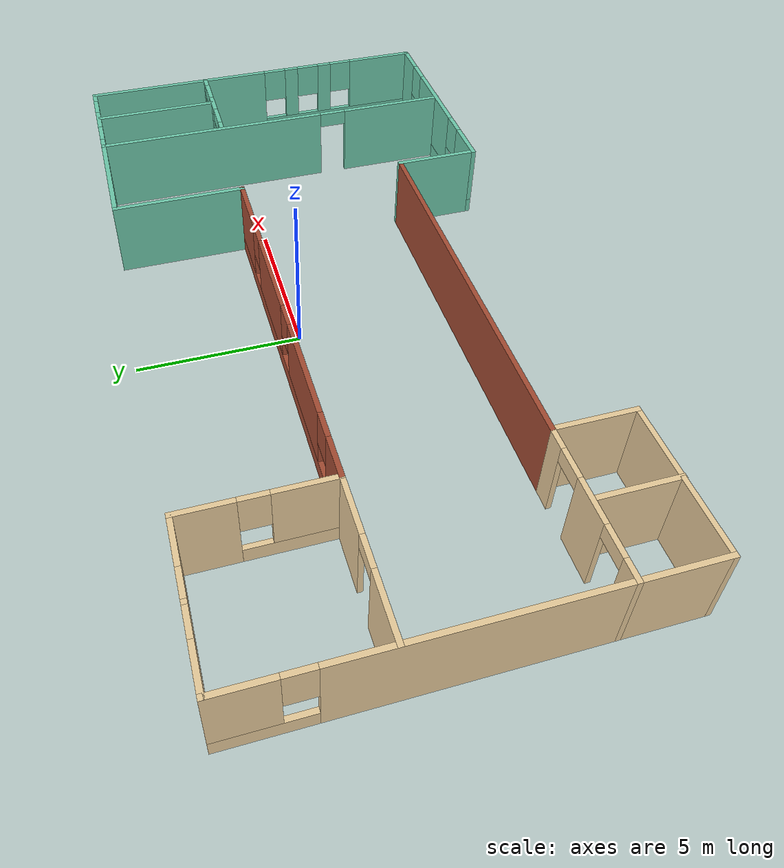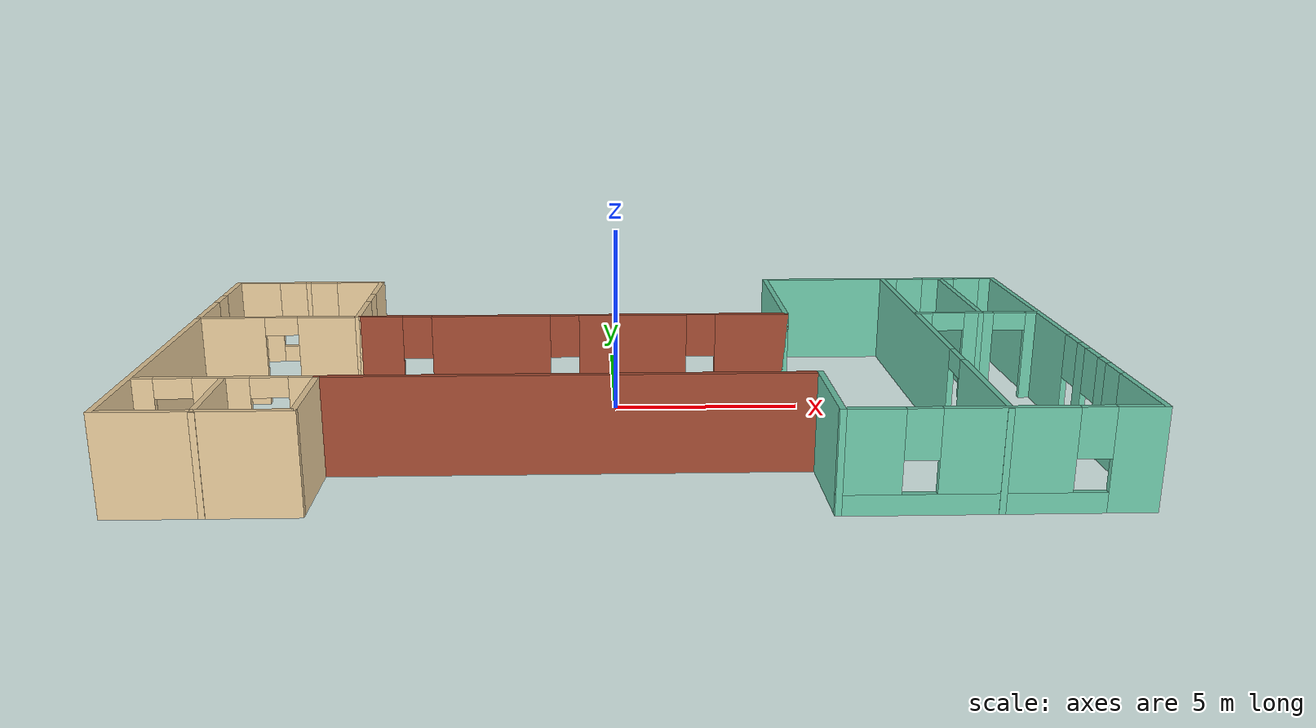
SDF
<?xml version='1.0'?>
<sdf version='1.6'>
  <model name='model.sdf'>
    <pose frame=''>0.195571 -1.26672 0 0 -0 0</pose>
    <link name='Wall_100'>
      <pose frame=''>-11.65 0.128883 0 0 -0 1.5708</pose>
      <visual name='Wall_100_Visual_0'>
        <pose frame=''>-1.2305 0 1.25 0 -0 0</pose>
        <geometry>
          <box>
            <size>9.53899 0.15 2.5</size>
          </box>
        </geometry>
        <material>
          <script>
            <uri>file://media/materials/scripts/gazebo.material</uri>
            <name>Gazebo/Grey</name>
          </script>
          <ambient>0.921569 0.807843 0.615686 1</ambient>
        </material>
        <meta>
          <layer>0</layer>
        </meta>
      </visual>
      <collision name='Wall_100_Collision_0'>
        <geometry>
          <box>
            <size>9.53899 0.15 2.5</size>
          </box>
        </geometry>
        <pose frame=''>-1.2305 0 1.25 0 -0 0</pose>
      </collision>
      <visual name='Wall_100_Visual_1'>
        <pose frame=''>4.7695 0 0.25 0 -0 0</pose>
        <geometry>
          <box>
            <size>2.46101 0.15 0.5</size>
          </box>
        </geometry>
        <material>
          <script>
            <uri>file://media/materials/scripts/gazebo.material</uri>
            <name>Gazebo/Grey</name>
          </script>
          <ambient>0.921569 0.807843 0.615686 1</ambient>
        </material>
        <meta>
          <layer>0</layer>
        </meta>
      </visual>
      <collision name='Wall_100_Collision_1'>
        <geometry>
          <box>
            <size>2.46101 0.15 0.5</size>
          </box>
        </geometry>
        <pose frame=''>4.7695 0 0.25 0 -0 0</pose>
      </collision>
      <visual name='Wall_100_Visual_2'>
        <pose frame=''>5.1695 0 1.5 0 -0 0</pose>
        <geometry>
          <box>
            <size>1.66101 0.15 2</size>
          </box>
        </geometry>
        <material>
          <script>
            <uri>file://media/materials/scripts/gazebo.material</uri>
            <name>Gazebo/Grey</name>
          </script>
          <ambient>0.921569 0.807843 0.615686 1</ambient>
        </material>
        <meta>
          <layer>0</layer>
        </meta>
      </visual>
      <collision name='Wall_100_Collision_2'>
        <geometry>
          <box>
            <size>1.66101 0.15 2</size>
          </box>
        </geometry>
        <pose frame=''>5.1695 0 1.5 0 -0 0</pose>
      </collision>
      <visual name='Wall_100_Visual_3'>
        <pose frame=''>3.93899 0 1.9 0 -0 0</pose>
        <geometry>
          <box>
            <size>0.8 0.15 1.2</size>
          </box>
        </geometry>
        <material>
          <script>
            <uri>file://media/materials/scripts/gazebo.material</uri>
            <name>Gazebo/Grey</name>
          </script>
          <ambient>0.921569 0.807843 0.615686 1</ambient>
        </material>
        <meta>
          <layer>0</layer>
        </meta>
      </visual>
      <collision name='Wall_100_Collision_3'>
        <geometry>
          <box>
            <size>0.8 0.15 1.2</size>
          </box>
        </geometry>
        <pose frame=''>3.93899 0 1.9 0 -0 0</pose>
      </collision>
    </link>
    <link name='Wall_102'>
      <pose frame=''>-9.475 -3.44612 0 0 -0 3.14159</pose>
      <visual name='Wall_102_Visual_0'>
        <pose frame=''>-1.89007 0 1.25 0 -0 0</pose>
        <geometry>
          <box>
            <size>0.719867 0.15 2.5</size>
          </box>
        </geometry>
        <material>
          <script>
            <uri>file://media/materials/scripts/gazebo.material</uri>
            <name>Gazebo/Grey</name>
          </script>
          <ambient>0.921569 0.807843 0.615686 1</ambient>
        </material>
        <meta>
          <layer>0</layer>
        </meta>
      </visual>
      <collision name='Wall_102_Collision_0'>
        <geometry>
          <box>
            <size>0.719867 0.15 2.5</size>
          </box>
        </geometry>
        <pose frame=''>-1.89007 0 1.25 0 -0 0</pose>
      </collision>
      <visual name='Wall_102_Visual_1'>
        <pose frame=''>0.035726 0 1.25 0 -0 0</pose>
        <geometry>
          <box>
            <size>1.33172 0.15 2.5</size>
          </box>
        </geometry>
        <material>
          <script>
            <uri>file://media/materials/scripts/gazebo.material</uri>
            <name>Gazebo/Grey</name>
          </script>
          <ambient>0.921569 0.807843 0.615686 1</ambient>
        </material>
        <meta>
          <layer>0</layer>
        </meta>
      </visual>
      <collision name='Wall_102_Collision_1'>
        <geometry>
          <box>
            <size>1.33172 0.15 2.5</size>
          </box>
        </geometry>
        <pose frame=''>0.035726 0 1.25 0 -0 0</pose>
      </collision>
      <visual name='Wall_102_Visual_2'>
        <pose frame=''>1.92579 0 1.25 0 -0 0</pose>
        <geometry>
          <box>
            <size>0.648414 0.15 2.5</size>
          </box>
        </geometry>
        <material>
          <script>
            <uri>file://media/materials/scripts/gazebo.material</uri>
            <name>Gazebo/Grey</name>
          </script>
          <ambient>0.921569 0.807843 0.615686 1</ambient>
        </material>
        <meta>
          <layer>0</layer>
        </meta>
      </visual>
      <collision name='Wall_102_Collision_2'>
        <geometry>
          <box>
            <size>0.648414 0.15 2.5</size>
          </box>
        </geometry>
        <pose frame=''>1.92579 0 1.25 0 -0 0</pose>
      </collision>
      <visual name='Wall_102_Visual_3'>
        <pose frame=''>-1.08013 0 2.25 0 -0 0</pose>
        <geometry>
          <box>
            <size>0.9 0.15 0.5</size>
          </box>
        </geometry>
        <material>
          <script>
            <uri>file://media/materials/scripts/gazebo.material</uri>
            <name>Gazebo/Grey</name>
          </script>
          <ambient>0.921569 0.807843 0.615686 1</ambient>
        </material>
        <meta>
          <layer>0</layer>
        </meta>
      </visual>
      <collision name='Wall_102_Collision_3'>
        <geometry>
          <box>
            <size>0.9 0.15 0.5</size>
          </box>
        </geometry>
        <pose frame=''>-1.08013 0 2.25 0 -0 0</pose>
      </collision>
      <visual name='Wall_102_Visual_4'>
        <pose frame=''>1.15159 0 2.25 0 -0 0</pose>
        <geometry>
          <box>
            <size>0.9 0.15 0.5</size>
          </box>
        </geometry>
        <material>
          <script>
            <uri>file://media/materials/scripts/gazebo.material</uri>
            <name>Gazebo/Grey</name>
          </script>
          <ambient>0.921569 0.807843 0.615686 1</ambient>
        </material>
        <meta>
          <layer>0</layer>
        </meta>
      </visual>
      <collision name='Wall_102_Collision_4'>
        <geometry>
          <box>
            <size>0.9 0.15 0.5</size>
          </box>
        </geometry>
        <pose frame=''>1.15159 0 2.25 0 -0 0</pose>
      </collision>
    </link>
    <link name='Wall_104'>
      <pose frame=''>-9.475 1.95388 0 0 -0 3.14159</pose>
      <visual name='Wall_104_Visual_0'>
        <pose frame=''>-1.38793 0 1.25 0 -0 0</pose>
        <geometry>
          <box>
            <size>1.72414 0.15 2.5</size>
          </box>
        </geometry>
        <material>
          <script>
            <uri>file://media/materials/scripts/gazebo.material</uri>
            <name>Gazebo/Grey</name>
          </script>
          <ambient>0.921569 0.807843 0.615686 1</ambient>
        </material>
        <meta>
          <layer>0</layer>
        </meta>
      </visual>
      <collision name='Wall_104_Collision_0'>
        <geometry>
          <box>
            <size>1.72414 0.15 2.5</size>
          </box>
        </geometry>
        <pose frame=''>-1.38793 0 1.25 0 -0 0</pose>
      </collision>
      <visual name='Wall_104_Visual_1'>
        <pose frame=''>1.31207 0 1.25 0 -0 0</pose>
        <geometry>
          <box>
            <size>1.87586 0.15 2.5</size>
          </box>
        </geometry>
        <material>
          <script>
            <uri>file://media/materials/scripts/gazebo.material</uri>
            <name>Gazebo/Grey</name>
          </script>
          <ambient>0.921569 0.807843 0.615686 1</ambient>
        </material>
        <meta>
          <layer>0</layer>
        </meta>
      </visual>
      <collision name='Wall_104_Collision_1'>
        <geometry>
          <box>
            <size>1.87586 0.15 2.5</size>
          </box>
        </geometry>
        <pose frame=''>1.31207 0 1.25 0 -0 0</pose>
      </collision>
      <visual name='Wall_104_Visual_2'>
        <pose frame=''>-0.07586 0 2.25 0 -0 0</pose>
        <geometry>
          <box>
            <size>0.9 0.15 0.5</size>
          </box>
        </geometry>
        <material>
          <script>
            <uri>file://media/materials/scripts/gazebo.material</uri>
            <name>Gazebo/Grey</name>
          </script>
          <ambient>0.921569 0.807843 0.615686 1</ambient>
        </material>
        <meta>
          <layer>0</layer>
        </meta>
      </visual>
      <collision name='Wall_104_Collision_2'>
        <geometry>
          <box>
            <size>0.9 0.15 0.5</size>
          </box>
        </geometry>
        <pose frame=''>-0.07586 0 2.25 0 -0 0</pose>
      </collision>
    </link>
    <link name='Wall_106'>
      <pose frame=''>8.20964 -0.003883 0 0 0 -1.5708</pose>
      <visual name='Wall_106_Visual_0'>
        <pose frame=''>-2.24841 0 1.25 0 -0 0</pose>
        <geometry>
          <box>
            <size>7.75318 0.15 2.5</size>
          </box>
        </geometry>
        <material>
          <script>
            <uri>file://media/materials/scripts/gazebo.material</uri>
            <name>Gazebo/Grey</name>
          </script>
          <ambient>0.435294 0.796078 0.67451 1</ambient>
        </material>
        <meta>
          <layer>0</layer>
        </meta>
      </visual>
      <collision name='Wall_106_Collision_0'>
        <geometry>
          <box>
            <size>7.75318 0.15 2.5</size>
          </box>
        </geometry>
        <pose frame=''>-2.24841 0 1.25 0 -0 0</pose>
      </collision>
      <visual name='Wall_106_Visual_1'>
        <pose frame=''>4.32659 0 1.25 0 -0 0</pose>
        <geometry>
          <box>
            <size>3.59682 0.15 2.5</size>
          </box>
        </geometry>
        <material>
          <script>
            <uri>file://media/materials/scripts/gazebo.material</uri>
            <name>Gazebo/Grey</name>
          </script>
          <ambient>0.435294 0.796078 0.67451 1</ambient>
        </material>
        <meta>
          <layer>0</layer>
        </meta>
      </visual>
      <collision name='Wall_106_Collision_1'>
        <geometry>
          <box>
            <size>3.59682 0.15 2.5</size>
          </box>
        </geometry>
        <pose frame=''>4.32659 0 1.25 0 -0 0</pose>
      </collision>
      <visual name='Wall_106_Visual_2'>
        <pose frame=''>2.07818 0 2.25 0 -0 0</pose>
        <geometry>
          <box>
            <size>0.9 0.15 0.5</size>
          </box>
        </geometry>
        <material>
          <script>
            <uri>file://media/materials/scripts/gazebo.material</uri>
            <name>Gazebo/Grey</name>
          </script>
          <ambient>0.435294 0.796078 0.67451 1</ambient>
        </material>
        <meta>
          <layer>0</layer>
        </meta>
      </visual>
      <collision name='Wall_106_Collision_2'>
        <geometry>
          <box>
            <size>0.9 0.15 0.5</size>
          </box>
        </geometry>
        <pose frame=''>2.07818 0 2.25 0 -0 0</pose>
      </collision>
    </link>
    <link name='Wall_130'>
      <pose frame=''>9.93002 1.93375 0 0 -0 0</pose>
      <visual name='Wall_130_Visual_0'>
        <pose frame=''>-1.51278 0 1.25 0 -0 0</pose>
        <geometry>
          <box>
            <size>0.474449 0.15 2.5</size>
          </box>
        </geometry>
        <material>
          <script>
            <uri>file://media/materials/scripts/gazebo.material</uri>
            <name>Gazebo/Grey</name>
          </script>
          <ambient>0.435294 0.796078 0.67451 1</ambient>
        </material>
        <meta>
          <layer>0</layer>
        </meta>
      </visual>
      <collision name='Wall_130_Collision_0'>
        <geometry>
          <box>
            <size>0.474449 0.15 2.5</size>
          </box>
        </geometry>
        <pose frame=''>-1.51278 0 1.25 0 -0 0</pose>
      </collision>
      <visual name='Wall_130_Visual_1'>
        <pose frame=''>0.035744 0 1.25 0 -0 0</pose>
        <geometry>
          <box>
            <size>0.82259 0.15 2.5</size>
          </box>
        </geometry>
        <material>
          <script>
            <uri>file://media/materials/scripts/gazebo.material</uri>
            <name>Gazebo/Grey</name>
          </script>
          <ambient>0.435294 0.796078 0.67451 1</ambient>
        </material>
        <meta>
          <layer>0</layer>
        </meta>
      </visual>
      <collision name='Wall_130_Collision_1'>
        <geometry>
          <box>
            <size>0.82259 0.15 2.5</size>
          </box>
        </geometry>
        <pose frame=''>0.035744 0 1.25 0 -0 0</pose>
      </collision>
      <visual name='Wall_130_Visual_2'>
        <pose frame=''>1.54852 0 1.25 0 -0 0</pose>
        <geometry>
          <box>
            <size>0.402961 0.15 2.5</size>
          </box>
        </geometry>
        <material>
          <script>
            <uri>file://media/materials/scripts/gazebo.material</uri>
            <name>Gazebo/Grey</name>
          </script>
          <ambient>0.435294 0.796078 0.67451 1</ambient>
        </material>
        <meta>
          <layer>0</layer>
        </meta>
      </visual>
      <collision name='Wall_130_Collision_2'>
        <geometry>
          <box>
            <size>0.402961 0.15 2.5</size>
          </box>
        </geometry>
        <pose frame=''>1.54852 0 1.25 0 -0 0</pose>
      </collision>
      <visual name='Wall_130_Visual_3'>
        <pose frame=''>-0.825551 0 2.25 0 -0 0</pose>
        <geometry>
          <box>
            <size>0.9 0.15 0.5</size>
          </box>
        </geometry>
        <material>
          <script>
            <uri>file://media/materials/scripts/gazebo.material</uri>
            <name>Gazebo/Grey</name>
          </script>
          <ambient>0.435294 0.796078 0.67451 1</ambient>
        </material>
        <meta>
          <layer>0</layer>
        </meta>
      </visual>
      <collision name='Wall_130_Collision_3'>
        <geometry>
          <box>
            <size>0.9 0.15 0.5</size>
          </box>
        </geometry>
        <pose frame=''>-0.825551 0 2.25 0 -0 0</pose>
      </collision>
      <visual name='Wall_130_Visual_4'>
        <pose frame=''>0.897039 0 2.25 0 -0 0</pose>
        <geometry>
          <box>
            <size>0.9 0.15 0.5</size>
          </box>
        </geometry>
        <material>
          <script>
            <uri>file://media/materials/scripts/gazebo.material</uri>
            <name>Gazebo/Grey</name>
          </script>
          <ambient>0.435294 0.796078 0.67451 1</ambient>
        </material>
        <meta>
          <layer>0</layer>
        </meta>
      </visual>
      <collision name='Wall_130_Collision_4'>
        <geometry>
          <box>
            <size>0.9 0.15 0.5</size>
          </box>
        </geometry>
        <pose frame=''>0.897039 0 2.25 0 -0 0</pose>
      </collision>
    </link>
    <link name='Wall_132'>
      <collision name='Wall_132_Collision'>
        <geometry>
          <box>
            <size>4.25 0.15 2.5</size>
          </box>
        </geometry>
        <pose frame=''>0 0 1.25 0 -0 0</pose>
      </collision>
      <visual name='Wall_132_Visual'>
        <pose frame=''>0 0 1.25 0 -0 0</pose>
        <geometry>
          <box>
            <size>4.25 0.15 2.5</size>
          </box>
        </geometry>
        <material>
          <script>
            <uri>file://media/materials/scripts/gazebo.material</uri>
            <name>Gazebo/Grey</name>
          </script>
          <ambient>0.435294 0.796078 0.67451 1</ambient>
        </material>
        <meta>
          <layer>0</layer>
        </meta>
      </visual>
      <pose frame=''>10.02 3.98375 0 0 -0 1.5708</pose>
    </link>
    <link name='Wall_139'>
      <collision name='Wall_139_Collision'>
        <geometry>
          <box>
            <size>2.5 0.15 2.5</size>
          </box>
        </geometry>
        <pose frame=''>0 0 1.25 0 -0 0</pose>
      </collision>
      <visual name='Wall_139_Visual'>
        <pose frame=''>0 0 1.25 0 -0 0</pose>
        <geometry>
          <box>
            <size>2.5 0.15 2.5</size>
          </box>
        </geometry>
        <material>
          <script>
            <uri>file://media/materials/scripts/gazebo.material</uri>
            <name>Gazebo/Grey</name>
          </script>
          <ambient>0.921569 0.807843 0.615686 1</ambient>
        </material>
        <meta>
          <layer>0</layer>
        </meta>
      </visual>
      <pose frame=''>-9.46252 -4.63532 0 0 0 -1.5708</pose>
    </link>
    <link name='Wall_89'>
      <pose frame=''>-9.475 6.05388 0 0 -0 0</pose>
      <visual name='Wall_89_Visual_0'>
        <pose frame=''>-1.58835 0 1.25 0 -0 0</pose>
        <geometry>
          <box>
            <size>1.3233 0.15 2.5</size>
          </box>
        </geometry>
        <material>
          <script>
            <uri>file://media/materials/scripts/gazebo.material</uri>
            <name>Gazebo/Grey</name>
          </script>
          <ambient>0.921569 0.807843 0.615686 1</ambient>
        </material>
        <meta>
          <layer>0</layer>
        </meta>
      </visual>
      <collision name='Wall_89_Collision_0'>
        <geometry>
          <box>
            <size>1.3233 0.15 2.5</size>
          </box>
        </geometry>
        <pose frame=''>-1.58835 0 1.25 0 -0 0</pose>
      </collision>
      <visual name='Wall_89_Visual_1'>
        <pose frame=''>0.661648 0 0.25 0 -0 0</pose>
        <geometry>
          <box>
            <size>3.17671 0.15 0.5</size>
          </box>
        </geometry>
        <material>
          <script>
            <uri>file://media/materials/scripts/gazebo.material</uri>
            <name>Gazebo/Grey</name>
          </script>
          <ambient>0.921569 0.807843 0.615686 1</ambient>
        </material>
        <meta>
          <layer>0</layer>
        </meta>
      </visual>
      <collision name='Wall_89_Collision_1'>
        <geometry>
          <box>
            <size>3.17671 0.15 0.5</size>
          </box>
        </geometry>
        <pose frame=''>0.661648 0 0.25 0 -0 0</pose>
      </collision>
      <visual name='Wall_89_Visual_2'>
        <pose frame=''>-0.058043 0 1.5 0 -0 0</pose>
        <geometry>
          <box>
            <size>0.137323 0.15 2</size>
          </box>
        </geometry>
        <material>
          <script>
            <uri>file://media/materials/scripts/gazebo.material</uri>
            <name>Gazebo/Grey</name>
          </script>
          <ambient>0.921569 0.807843 0.615686 1</ambient>
        </material>
        <meta>
          <layer>0</layer>
        </meta>
      </visual>
      <collision name='Wall_89_Collision_2'>
        <geometry>
          <box>
            <size>0.137323 0.15 2</size>
          </box>
        </geometry>
        <pose frame=''>-0.058043 0 1.5 0 -0 0</pose>
      </collision>
      <visual name='Wall_89_Visual_3'>
        <pose frame=''>1.53031 0 1.5 0 -0 0</pose>
        <geometry>
          <box>
            <size>1.43938 0.15 2</size>
          </box>
        </geometry>
        <material>
          <script>
            <uri>file://media/materials/scripts/gazebo.material</uri>
            <name>Gazebo/Grey</name>
          </script>
          <ambient>0.921569 0.807843 0.615686 1</ambient>
        </material>
        <meta>
          <layer>0</layer>
        </meta>
      </visual>
      <collision name='Wall_89_Collision_3'>
        <geometry>
          <box>
            <size>1.43938 0.15 2</size>
          </box>
        </geometry>
        <pose frame=''>1.53031 0 1.5 0 -0 0</pose>
      </collision>
      <visual name='Wall_89_Visual_4'>
        <pose frame=''>-0.526705 0 1.9 0 -0 0</pose>
        <geometry>
          <box>
            <size>0.8 0.15 1.2</size>
          </box>
        </geometry>
        <material>
          <script>
            <uri>file://media/materials/scripts/gazebo.material</uri>
            <name>Gazebo/Grey</name>
          </script>
          <ambient>0.921569 0.807843 0.615686 1</ambient>
        </material>
        <meta>
          <layer>0</layer>
        </meta>
      </visual>
      <collision name='Wall_89_Collision_4'>
        <geometry>
          <box>
            <size>0.8 0.15 1.2</size>
          </box>
        </geometry>
        <pose frame=''>-0.526705 0 1.9 0 -0 0</pose>
      </collision>
      <visual name='Wall_89_Visual_5'>
        <pose frame=''>0.410618 0 1.9 0 -0 0</pose>
        <geometry>
          <box>
            <size>0.8 0.15 1.2</size>
          </box>
        </geometry>
        <material>
          <script>
            <uri>file://media/materials/scripts/gazebo.material</uri>
            <name>Gazebo/Grey</name>
          </script>
          <ambient>0.921569 0.807843 0.615686 1</ambient>
        </material>
        <meta>
          <layer>0</layer>
        </meta>
      </visual>
      <collision name='Wall_89_Collision_5'>
        <geometry>
          <box>
            <size>0.8 0.15 1.2</size>
          </box>
        </geometry>
        <pose frame=''>0.410618 0 1.9 0 -0 0</pose>
      </collision>
    </link>
    <link name='Wall_90'>
      <pose frame=''>-7.3 4.00388 0 0 0 -1.5708</pose>
      <visual name='Wall_90_Visual_0'>
        <pose frame=''>-1.30565 0 1.25 0 -0 0</pose>
        <geometry>
          <box>
            <size>1.63869 0.15 2.5</size>
          </box>
        </geometry>
        <material>
          <script>
            <uri>file://media/materials/scripts/gazebo.material</uri>
            <name>Gazebo/Grey</name>
          </script>
          <ambient>0.921569 0.807843 0.615686 1</ambient>
        </material>
        <meta>
          <layer>0</layer>
        </meta>
      </visual>
      <collision name='Wall_90_Collision_0'>
        <geometry>
          <box>
            <size>1.63869 0.15 2.5</size>
          </box>
        </geometry>
        <pose frame=''>-1.30565 0 1.25 0 -0 0</pose>
      </collision>
      <visual name='Wall_90_Visual_1'>
        <pose frame=''>0.819347 0 0.25 0 -0 0</pose>
        <geometry>
          <box>
            <size>2.61131 0.15 0.5</size>
          </box>
        </geometry>
        <material>
          <script>
            <uri>file://media/materials/scripts/gazebo.material</uri>
            <name>Gazebo/Grey</name>
          </script>
          <ambient>0.921569 0.807843 0.615686 1</ambient>
        </material>
        <meta>
          <layer>0</layer>
        </meta>
      </visual>
      <collision name='Wall_90_Collision_1'>
        <geometry>
          <box>
            <size>2.61131 0.15 0.5</size>
          </box>
        </geometry>
        <pose frame=''>0.819347 0 0.25 0 -0 0</pose>
      </collision>
      <visual name='Wall_90_Visual_2'>
        <pose frame=''>1.21935 0 1.5 0 -0 0</pose>
        <geometry>
          <box>
            <size>1.81131 0.15 2</size>
          </box>
        </geometry>
        <material>
          <script>
            <uri>file://media/materials/scripts/gazebo.material</uri>
            <name>Gazebo/Grey</name>
          </script>
          <ambient>0.921569 0.807843 0.615686 1</ambient>
        </material>
        <meta>
          <layer>0</layer>
        </meta>
      </visual>
      <collision name='Wall_90_Collision_2'>
        <geometry>
          <box>
            <size>1.81131 0.15 2</size>
          </box>
        </geometry>
        <pose frame=''>1.21935 0 1.5 0 -0 0</pose>
      </collision>
      <visual name='Wall_90_Visual_3'>
        <pose frame=''>-0.086306 0 1.9 0 -0 0</pose>
        <geometry>
          <box>
            <size>0.8 0.15 1.2</size>
          </box>
        </geometry>
        <material>
          <script>
            <uri>file://media/materials/scripts/gazebo.material</uri>
            <name>Gazebo/Grey</name>
          </script>
          <ambient>0.921569 0.807843 0.615686 1</ambient>
        </material>
        <meta>
          <layer>0</layer>
        </meta>
      </visual>
      <collision name='Wall_90_Collision_3'>
        <geometry>
          <box>
            <size>0.8 0.15 1.2</size>
          </box>
        </geometry>
        <pose frame=''>-0.086306 0 1.9 0 -0 0</pose>
      </collision>
    </link>
    <link name='Wall_91'>
      <pose frame=''>-1.375 1.95388 0 0 -0 0</pose>
      <visual name='Wall_91_Visual_0'>
        <pose frame=''>-5.3488 0 1.25 0 -0 0</pose>
        <geometry>
          <box>
            <size>1.3024 0.15 2.5</size>
          </box>
        </geometry>
        <material>
          <script>
            <uri>file://media/materials/scripts/gazebo.material</uri>
            <name>Gazebo/Bricks</name>
          </script>
          <ambient>0.996078 0.47451 0.0196078 1</ambient>
        </material>
        <meta>
          <layer>0</layer>
        </meta>
      </visual>
      <collision name='Wall_91_Collision_0'>
        <geometry>
          <box>
            <size>1.3024 0.15 2.5</size>
          </box>
        </geometry>
        <pose frame=''>-5.3488 0 1.25 0 -0 0</pose>
      </collision>
      <visual name='Wall_91_Visual_1'>
        <pose frame=''>0.651202 0 0.25 0 -0 0</pose>
        <geometry>
          <box>
            <size>10.6976 0.15 0.5</size>
          </box>
        </geometry>
        <material>
          <script>
            <uri>file://media/materials/scripts/gazebo.material</uri>
            <name>Gazebo/Bricks</name>
          </script>
          <ambient>0.996078 0.47451 0.0196078 1</ambient>
        </material>
        <meta>
          <layer>0</layer>
        </meta>
      </visual>
      <collision name='Wall_91_Collision_1'>
        <geometry>
          <box>
            <size>10.6976 0.15 0.5</size>
          </box>
        </geometry>
        <pose frame=''>0.651202 0 0.25 0 -0 0</pose>
      </collision>
      <visual name='Wall_91_Visual_2'>
        <pose frame=''>-2.2611 0 1.5 0 -0 0</pose>
        <geometry>
          <box>
            <size>3.273 0.15 2</size>
          </box>
        </geometry>
        <material>
          <script>
            <uri>file://media/materials/scripts/gazebo.material</uri>
            <name>Gazebo/Bricks</name>
          </script>
          <ambient>0.996078 0.47451 0.0196078 1</ambient>
        </material>
        <meta>
          <layer>0</layer>
        </meta>
      </visual>
      <collision name='Wall_91_Collision_2'>
        <geometry>
          <box>
            <size>3.273 0.15 2</size>
          </box>
        </geometry>
        <pose frame=''>-2.2611 0 1.5 0 -0 0</pose>
      </collision>
      <visual name='Wall_91_Visual_3'>
        <pose frame=''>1.66433 0 1.5 0 -0 0</pose>
        <geometry>
          <box>
            <size>2.97785 0.15 2</size>
          </box>
        </geometry>
        <material>
          <script>
            <uri>file://media/materials/scripts/gazebo.material</uri>
            <name>Gazebo/Bricks</name>
          </script>
          <ambient>0.996078 0.47451 0.0196078 1</ambient>
        </material>
        <meta>
          <layer>0</layer>
        </meta>
      </visual>
      <collision name='Wall_91_Collision_3'>
        <geometry>
          <box>
            <size>2.97785 0.15 2</size>
          </box>
        </geometry>
        <pose frame=''>1.66433 0 1.5 0 -0 0</pose>
      </collision>
      <visual name='Wall_91_Visual_4'>
        <pose frame=''>4.97663 0 1.5 0 -0 0</pose>
        <geometry>
          <box>
            <size>2.04675 0.15 2</size>
          </box>
        </geometry>
        <material>
          <script>
            <uri>file://media/materials/scripts/gazebo.material</uri>
            <name>Gazebo/Bricks</name>
          </script>
          <ambient>0.996078 0.47451 0.0196078 1</ambient>
        </material>
        <meta>
          <layer>0</layer>
        </meta>
      </visual>
      <collision name='Wall_91_Collision_4'>
        <geometry>
          <box>
            <size>2.04675 0.15 2</size>
          </box>
        </geometry>
        <pose frame=''>4.97663 0 1.5 0 -0 0</pose>
      </collision>
      <visual name='Wall_91_Visual_5'>
        <pose frame=''>-4.2976 0 1.9 0 -0 0</pose>
        <geometry>
          <box>
            <size>0.8 0.15 1.2</size>
          </box>
        </geometry>
        <material>
          <script>
            <uri>file://media/materials/scripts/gazebo.material</uri>
            <name>Gazebo/Bricks</name>
          </script>
          <ambient>0.996078 0.47451 0.0196078 1</ambient>
        </material>
        <meta>
          <layer>0</layer>
        </meta>
      </visual>
      <collision name='Wall_91_Collision_5'>
        <geometry>
          <box>
            <size>0.8 0.15 1.2</size>
          </box>
        </geometry>
        <pose frame=''>-4.2976 0 1.9 0 -0 0</pose>
      </collision>
      <visual name='Wall_91_Visual_6'>
        <pose frame=''>-0.224598 0 1.9 0 -0 0</pose>
        <geometry>
          <box>
            <size>0.8 0.15 1.2</size>
          </box>
        </geometry>
        <material>
          <script>
            <uri>file://media/materials/scripts/gazebo.material</uri>
            <name>Gazebo/Bricks</name>
          </script>
          <ambient>0.996078 0.47451 0.0196078 1</ambient>
        </material>
        <meta>
          <layer>0</layer>
        </meta>
      </visual>
      <collision name='Wall_91_Collision_6'>
        <geometry>
          <box>
            <size>0.8 0.15 1.2</size>
          </box>
        </geometry>
        <pose frame=''>-0.224598 0 1.9 0 -0 0</pose>
      </collision>
      <visual name='Wall_91_Visual_7'>
        <pose frame=''>3.55326 0 1.9 0 -0 0</pose>
        <geometry>
          <box>
            <size>0.8 0.15 1.2</size>
          </box>
        </geometry>
        <material>
          <script>
            <uri>file://media/materials/scripts/gazebo.material</uri>
            <name>Gazebo/Bricks</name>
          </script>
          <ambient>0.996078 0.47451 0.0196078 1</ambient>
        </material>
        <meta>
          <layer>0</layer>
        </meta>
      </visual>
      <collision name='Wall_91_Collision_7'>
        <geometry>
          <box>
            <size>0.8 0.15 1.2</size>
          </box>
        </geometry>
        <pose frame=''>3.55326 0 1.9 0 -0 0</pose>
      </collision>
    </link>
    <link name='Wall_92'>
      <collision name='Wall_92_Collision'>
        <geometry>
          <box>
            <size>4.25 0.15 2.5</size>
          </box>
        </geometry>
        <pose frame=''>0 0 1.25 0 -0 0</pose>
      </collision>
      <visual name='Wall_92_Visual'>
        <pose frame=''>0 0 1.25 0 -0 0</pose>
        <geometry>
          <box>
            <size>4.25 0.15 2.5</size>
          </box>
        </geometry>
        <material>
          <script>
            <uri>file://media/materials/scripts/gazebo.material</uri>
            <name>Gazebo/Grey</name>
          </script>
          <ambient>0.435294 0.796078 0.67451 1</ambient>
        </material>
        <meta>
          <layer>0</layer>
        </meta>
      </visual>
      <pose frame=''>4.55 4.00388 0 0 -0 1.5708</pose>
    </link>
    <link name='Wall_93'>
      <pose frame=''>8.1 6.05388 0 0 -0 0</pose>
      <visual name='Wall_93_Visual_0'>
        <pose frame=''>-1.53665 0 1.25 0 -0 0</pose>
        <geometry>
          <box>
            <size>4.1767 0.15 2.5</size>
          </box>
        </geometry>
        <material>
          <script>
            <uri>file://media/materials/scripts/gazebo.material</uri>
            <name>Gazebo/Grey</name>
          </script>
          <ambient>0.435294 0.796078 0.67451 1</ambient>
        </material>
        <meta>
          <layer>0</layer>
        </meta>
      </visual>
      <collision name='Wall_93_Collision_0'>
        <geometry>
          <box>
            <size>4.1767 0.15 2.5</size>
          </box>
        </geometry>
        <pose frame=''>-1.53665 0 1.25 0 -0 0</pose>
      </collision>
      <visual name='Wall_93_Visual_1'>
        <pose frame=''>2.08835 0 0.25 0 -0 0</pose>
        <geometry>
          <box>
            <size>3.0733 0.15 0.5</size>
          </box>
        </geometry>
        <material>
          <script>
            <uri>file://media/materials/scripts/gazebo.material</uri>
            <name>Gazebo/Grey</name>
          </script>
          <ambient>0.435294 0.796078 0.67451 1</ambient>
        </material>
        <meta>
          <layer>0</layer>
        </meta>
      </visual>
      <collision name='Wall_93_Collision_1'>
        <geometry>
          <box>
            <size>3.0733 0.15 0.5</size>
          </box>
        </geometry>
        <pose frame=''>2.08835 0 0.25 0 -0 0</pose>
      </collision>
      <visual name='Wall_93_Visual_2'>
        <pose frame=''>1.8449 0 1.5 0 -0 0</pose>
        <geometry>
          <box>
            <size>0.986389 0.15 2</size>
          </box>
        </geometry>
        <material>
          <script>
            <uri>file://media/materials/scripts/gazebo.material</uri>
            <name>Gazebo/Grey</name>
          </script>
          <ambient>0.435294 0.796078 0.67451 1</ambient>
        </material>
        <meta>
          <layer>0</layer>
        </meta>
      </visual>
      <collision name='Wall_93_Collision_2'>
        <geometry>
          <box>
            <size>0.986389 0.15 2</size>
          </box>
        </geometry>
        <pose frame=''>1.8449 0 1.5 0 -0 0</pose>
      </collision>
      <visual name='Wall_93_Visual_3'>
        <pose frame=''>3.38155 0 1.5 0 -0 0</pose>
        <geometry>
          <box>
            <size>0.486907 0.15 2</size>
          </box>
        </geometry>
        <material>
          <script>
            <uri>file://media/materials/scripts/gazebo.material</uri>
            <name>Gazebo/Grey</name>
          </script>
          <ambient>0.435294 0.796078 0.67451 1</ambient>
        </material>
        <meta>
          <layer>0</layer>
        </meta>
      </visual>
      <collision name='Wall_93_Collision_3'>
        <geometry>
          <box>
            <size>0.486907 0.15 2</size>
          </box>
        </geometry>
        <pose frame=''>3.38155 0 1.5 0 -0 0</pose>
      </collision>
      <visual name='Wall_93_Visual_4'>
        <pose frame=''>0.951704 0 1.9 0 -0 0</pose>
        <geometry>
          <box>
            <size>0.8 0.15 1.2</size>
          </box>
        </geometry>
        <material>
          <script>
            <uri>file://media/materials/scripts/gazebo.material</uri>
            <name>Gazebo/Grey</name>
          </script>
          <ambient>0.435294 0.796078 0.67451 1</ambient>
        </material>
        <meta>
          <layer>0</layer>
        </meta>
      </visual>
      <collision name='Wall_93_Collision_4'>
        <geometry>
          <box>
            <size>0.8 0.15 1.2</size>
          </box>
        </geometry>
        <pose frame=''>0.951704 0 1.9 0 -0 0</pose>
      </collision>
      <visual name='Wall_93_Visual_5'>
        <pose frame=''>2.73809 0 1.9 0 -0 0</pose>
        <geometry>
          <box>
            <size>0.8 0.15 1.2</size>
          </box>
        </geometry>
        <material>
          <script>
            <uri>file://media/materials/scripts/gazebo.material</uri>
            <name>Gazebo/Grey</name>
          </script>
          <ambient>0.435294 0.796078 0.67451 1</ambient>
        </material>
        <meta>
          <layer>0</layer>
        </meta>
      </visual>
      <collision name='Wall_93_Collision_5'>
        <geometry>
          <box>
            <size>0.8 0.15 1.2</size>
          </box>
        </geometry>
        <pose frame=''>2.73809 0 1.9 0 -0 0</pose>
      </collision>
    </link>
    <link name='Wall_94'>
      <pose frame=''>11.65 0.003883 0 0 0 -1.5708</pose>
      <visual name='Wall_94_Visual_0'>
        <pose frame=''>-2.8954 0 1.25 0 -0 0</pose>
        <geometry>
          <box>
            <size>6.45921 0.15 2.5</size>
          </box>
        </geometry>
        <material>
          <script>
            <uri>file://media/materials/scripts/gazebo.material</uri>
            <name>Gazebo/Grey</name>
          </script>
          <ambient>0.435294 0.796078 0.67451 1</ambient>
        </material>
        <meta>
          <layer>0</layer>
        </meta>
      </visual>
      <collision name='Wall_94_Collision_0'>
        <geometry>
          <box>
            <size>6.45921 0.15 2.5</size>
          </box>
        </geometry>
        <pose frame=''>-2.8954 0 1.25 0 -0 0</pose>
      </collision>
      <visual name='Wall_94_Visual_1'>
        <pose frame=''>3.2296 0 0.25 0 -0 0</pose>
        <geometry>
          <box>
            <size>5.79079 0.15 0.5</size>
          </box>
        </geometry>
        <material>
          <script>
            <uri>file://media/materials/scripts/gazebo.material</uri>
            <name>Gazebo/Grey</name>
          </script>
          <ambient>0.435294 0.796078 0.67451 1</ambient>
        </material>
        <meta>
          <layer>0</layer>
        </meta>
      </visual>
      <collision name='Wall_94_Collision_1'>
        <geometry>
          <box>
            <size>5.79079 0.15 0.5</size>
          </box>
        </geometry>
        <pose frame=''>3.2296 0 0.25 0 -0 0</pose>
      </collision>
      <visual name='Wall_94_Visual_2'>
        <pose frame=''>1.3814 0 1.5 0 -0 0</pose>
        <geometry>
          <box>
            <size>0.494397 0.15 2</size>
          </box>
        </geometry>
        <material>
          <script>
            <uri>file://media/materials/scripts/gazebo.material</uri>
            <name>Gazebo/Grey</name>
          </script>
          <ambient>0.435294 0.796078 0.67451 1</ambient>
        </material>
        <meta>
          <layer>0</layer>
        </meta>
      </visual>
      <collision name='Wall_94_Collision_2'>
        <geometry>
          <box>
            <size>0.494397 0.15 2</size>
          </box>
        </geometry>
        <pose frame=''>1.3814 0 1.5 0 -0 0</pose>
      </collision>
      <visual name='Wall_94_Visual_3'>
        <pose frame=''>2.6758 0 1.5 0 -0 0</pose>
        <geometry>
          <box>
            <size>0.494397 0.15 2</size>
          </box>
        </geometry>
        <material>
          <script>
            <uri>file://media/materials/scripts/gazebo.material</uri>
            <name>Gazebo/Grey</name>
          </script>
          <ambient>0.435294 0.796078 0.67451 1</ambient>
        </material>
        <meta>
          <layer>0</layer>
        </meta>
      </visual>
      <collision name='Wall_94_Collision_3'>
        <geometry>
          <box>
            <size>0.494397 0.15 2</size>
          </box>
        </geometry>
        <pose frame=''>2.6758 0 1.5 0 -0 0</pose>
      </collision>
      <visual name='Wall_94_Visual_4'>
        <pose frame=''>4.924 0 1.5 0 -0 0</pose>
        <geometry>
          <box>
            <size>2.402 0.15 2</size>
          </box>
        </geometry>
        <material>
          <script>
            <uri>file://media/materials/scripts/gazebo.material</uri>
            <name>Gazebo/Grey</name>
          </script>
          <ambient>0.435294 0.796078 0.67451 1</ambient>
        </material>
        <meta>
          <layer>0</layer>
        </meta>
      </visual>
      <collision name='Wall_94_Collision_4'>
        <geometry>
          <box>
            <size>2.402 0.15 2</size>
          </box>
        </geometry>
        <pose frame=''>4.924 0 1.5 0 -0 0</pose>
      </collision>
      <visual name='Wall_94_Visual_5'>
        <pose frame=''>0.734206 0 1.9 0 -0 0</pose>
        <geometry>
          <box>
            <size>0.8 0.15 1.2</size>
          </box>
        </geometry>
        <material>
          <script>
            <uri>file://media/materials/scripts/gazebo.material</uri>
            <name>Gazebo/Grey</name>
          </script>
          <ambient>0.435294 0.796078 0.67451 1</ambient>
        </material>
        <meta>
          <layer>0</layer>
        </meta>
      </visual>
      <collision name='Wall_94_Collision_5'>
        <geometry>
          <box>
            <size>0.8 0.15 1.2</size>
          </box>
        </geometry>
        <pose frame=''>0.734206 0 1.9 0 -0 0</pose>
      </collision>
      <visual name='Wall_94_Visual_6'>
        <pose frame=''>2.0286 0 1.9 0 -0 0</pose>
        <geometry>
          <box>
            <size>0.8 0.15 1.2</size>
          </box>
        </geometry>
        <material>
          <script>
            <uri>file://media/materials/scripts/gazebo.material</uri>
            <name>Gazebo/Grey</name>
          </script>
          <ambient>0.435294 0.796078 0.67451 1</ambient>
        </material>
        <meta>
          <layer>0</layer>
        </meta>
      </visual>
      <collision name='Wall_94_Collision_6'>
        <geometry>
          <box>
            <size>0.8 0.15 1.2</size>
          </box>
        </geometry>
        <pose frame=''>2.0286 0 1.9 0 -0 0</pose>
      </collision>
      <visual name='Wall_94_Visual_7'>
        <pose frame=''>3.323 0 1.9 0 -0 0</pose>
        <geometry>
          <box>
            <size>0.8 0.15 1.2</size>
          </box>
        </geometry>
        <material>
          <script>
            <uri>file://media/materials/scripts/gazebo.material</uri>
            <name>Gazebo/Grey</name>
          </script>
          <ambient>0.435294 0.796078 0.67451 1</ambient>
        </material>
        <meta>
          <layer>0</layer>
        </meta>
      </visual>
      <collision name='Wall_94_Collision_7'>
        <geometry>
          <box>
            <size>0.8 0.15 1.2</size>
          </box>
        </geometry>
        <pose frame=''>3.323 0 1.9 0 -0 0</pose>
      </collision>
    </link>
    <link name='Wall_95'>
      <pose frame=''>8.1 -6.04612 0 0 -0 3.14159</pose>
      <visual name='Wall_95_Visual_0'>
        <pose frame=''>-3.03786 0 1.25 0 -0 0</pose>
        <geometry>
          <box>
            <size>1.17428 0.15 2.5</size>
          </box>
        </geometry>
        <material>
          <script>
            <uri>file://media/materials/scripts/gazebo.material</uri>
            <name>Gazebo/Grey</name>
          </script>
          <ambient>0.435294 0.796078 0.67451 1</ambient>
        </material>
        <meta>
          <layer>0</layer>
        </meta>
      </visual>
      <collision name='Wall_95_Collision_0'>
        <geometry>
          <box>
            <size>1.17428 0.15 2.5</size>
          </box>
        </geometry>
        <pose frame=''>-3.03786 0 1.25 0 -0 0</pose>
      </collision>
      <visual name='Wall_95_Visual_1'>
        <pose frame=''>0.587142 0 0.25 0 -0 0</pose>
        <geometry>
          <box>
            <size>6.07572 0.15 0.5</size>
          </box>
        </geometry>
        <material>
          <script>
            <uri>file://media/materials/scripts/gazebo.material</uri>
            <name>Gazebo/Grey</name>
          </script>
          <ambient>0.435294 0.796078 0.67451 1</ambient>
        </material>
        <meta>
          <layer>0</layer>
        </meta>
      </visual>
      <collision name='Wall_95_Collision_1'>
        <geometry>
          <box>
            <size>6.07572 0.15 0.5</size>
          </box>
        </geometry>
        <pose frame=''>0.587142 0 0.25 0 -0 0</pose>
      </collision>
      <visual name='Wall_95_Visual_2'>
        <pose frame=''>-0.142597 0 1.5 0 -0 0</pose>
        <geometry>
          <box>
            <size>3.01624 0.15 2</size>
          </box>
        </geometry>
        <material>
          <script>
            <uri>file://media/materials/scripts/gazebo.material</uri>
            <name>Gazebo/Grey</name>
          </script>
          <ambient>0.435294 0.796078 0.67451 1</ambient>
        </material>
        <meta>
          <layer>0</layer>
        </meta>
      </visual>
      <collision name='Wall_95_Collision_2'>
        <geometry>
          <box>
            <size>3.01624 0.15 2</size>
          </box>
        </geometry>
        <pose frame=''>-0.142597 0 1.5 0 -0 0</pose>
      </collision>
      <visual name='Wall_95_Visual_3'>
        <pose frame=''>2.89526 0 1.5 0 -0 0</pose>
        <geometry>
          <box>
            <size>1.45948 0.15 2</size>
          </box>
        </geometry>
        <material>
          <script>
            <uri>file://media/materials/scripts/gazebo.material</uri>
            <name>Gazebo/Grey</name>
          </script>
          <ambient>0.435294 0.796078 0.67451 1</ambient>
        </material>
        <meta>
          <layer>0</layer>
        </meta>
      </visual>
      <collision name='Wall_95_Collision_3'>
        <geometry>
          <box>
            <size>1.45948 0.15 2</size>
          </box>
        </geometry>
        <pose frame=''>2.89526 0 1.5 0 -0 0</pose>
      </collision>
      <visual name='Wall_95_Visual_4'>
        <pose frame=''>-2.05072 0 1.9 0 -0 0</pose>
        <geometry>
          <box>
            <size>0.8 0.15 1.2</size>
          </box>
        </geometry>
        <material>
          <script>
            <uri>file://media/materials/scripts/gazebo.material</uri>
            <name>Gazebo/Grey</name>
          </script>
          <ambient>0.435294 0.796078 0.67451 1</ambient>
        </material>
        <meta>
          <layer>0</layer>
        </meta>
      </visual>
      <collision name='Wall_95_Collision_4'>
        <geometry>
          <box>
            <size>0.8 0.15 1.2</size>
          </box>
        </geometry>
        <pose frame=''>-2.05072 0 1.9 0 -0 0</pose>
      </collision>
      <visual name='Wall_95_Visual_5'>
        <pose frame=''>1.76552 0 1.9 0 -0 0</pose>
        <geometry>
          <box>
            <size>0.8 0.15 1.2</size>
          </box>
        </geometry>
        <material>
          <script>
            <uri>file://media/materials/scripts/gazebo.material</uri>
            <name>Gazebo/Grey</name>
          </script>
          <ambient>0.435294 0.796078 0.67451 1</ambient>
        </material>
        <meta>
          <layer>0</layer>
        </meta>
      </visual>
      <collision name='Wall_95_Collision_5'>
        <geometry>
          <box>
            <size>0.8 0.15 1.2</size>
          </box>
        </geometry>
        <pose frame=''>1.76552 0 1.9 0 -0 0</pose>
      </collision>
    </link>
    <link name='Wall_96'>
      <collision name='Wall_96_Collision'>
        <geometry>
          <box>
            <size>2.75 0.15 2.5</size>
          </box>
        </geometry>
        <pose frame=''>0 0 1.25 0 -0 0</pose>
      </collision>
      <visual name='Wall_96_Visual'>
        <pose frame=''>0 0 1.25 0 -0 0</pose>
        <geometry>
          <box>
            <size>2.75 0.15 2.5</size>
          </box>
        </geometry>
        <material>
          <script>
            <uri>file://media/materials/scripts/gazebo.material</uri>
            <name>Gazebo/Grey</name>
          </script>
          <ambient>0.435294 0.796078 0.67451 1</ambient>
        </material>
        <meta>
          <layer>0</layer>
        </meta>
      </visual>
      <pose frame=''>4.55 -4.74612 0 0 -0 1.5708</pose>
    </link>
    <link name='Wall_97'>
      <collision name='Wall_97_Collision'>
        <geometry>
          <box>
            <size>12 0.15 2.5</size>
          </box>
        </geometry>
        <pose frame=''>0 0 1.25 0 -0 0</pose>
      </collision>
      <visual name='Wall_97_Visual'>
        <pose frame=''>0 0 1.25 0 -0 0</pose>
        <geometry>
          <box>
            <size>12 0.15 2.5</size>
          </box>
        </geometry>
        <material>
          <script>
            <uri>file://media/materials/scripts/gazebo.material</uri>
            <name>Gazebo/Bricks</name>
          </script>
          <ambient>0.996078 0.47451 0.0196078 1</ambient>
        </material>
        <meta>
          <layer>0</layer>
        </meta>
      </visual>
      <pose frame=''>-1.375 -3.44612 0 0 -0 3.14159</pose>
    </link>
    <link name='Wall_98'>
      <collision name='Wall_98_Collision'>
        <geometry>
          <box>
            <size>2.5 0.15 2.5</size>
          </box>
        </geometry>
        <pose frame=''>0 0 1.25 0 -0 0</pose>
      </collision>
      <visual name='Wall_98_Visual'>
        <pose frame=''>0 0 1.25 0 -0 0</pose>
        <geometry>
          <box>
            <size>2.5 0.15 2.5</size>
          </box>
        </geometry>
        <material>
          <script>
            <uri>file://media/materials/scripts/gazebo.material</uri>
            <name>Gazebo/Grey</name>
          </script>
          <ambient>0.921569 0.807843 0.615686 1</ambient>
        </material>
        <meta>
          <layer>0</layer>
        </meta>
      </visual>
      <pose frame=''>-7.3 -4.62112 0 0 0 -1.5708</pose>
    </link>
    <link name='Wall_99'>
      <collision name='Wall_99_Collision'>
        <geometry>
          <box>
            <size>4.5 0.15 2.5</size>
          </box>
        </geometry>
        <pose frame=''>0 0 1.25 0 -0 0</pose>
      </collision>
      <visual name='Wall_99_Visual'>
        <pose frame=''>0 0 1.25 0 -0 0</pose>
        <geometry>
          <box>
            <size>4.5 0.15 2.5</size>
          </box>
        </geometry>
        <material>
          <script>
            <uri>file://media/materials/scripts/gazebo.material</uri>
            <name>Gazebo/Grey</name>
          </script>
          <ambient>0.921569 0.807843 0.615686 1</ambient>
        </material>
        <meta>
          <layer>0</layer>
        </meta>
      </visual>
      <pose frame=''>-9.475 -5.79612 0 0 -0 3.14159</pose>
    </link>
    <static>1</static>
  </model>
</sdf>
